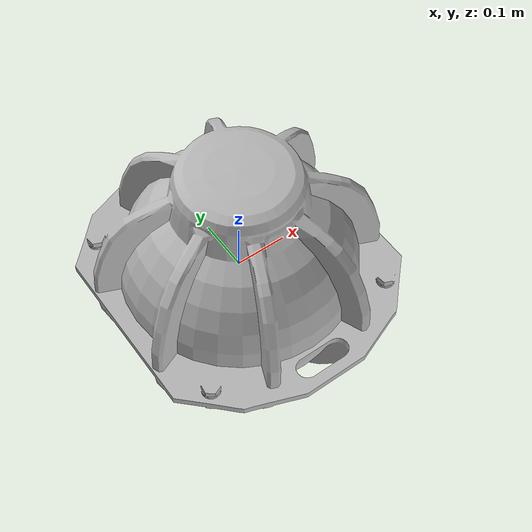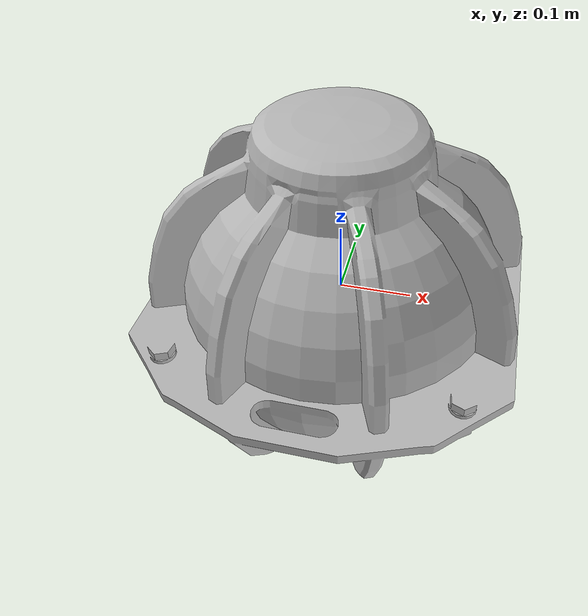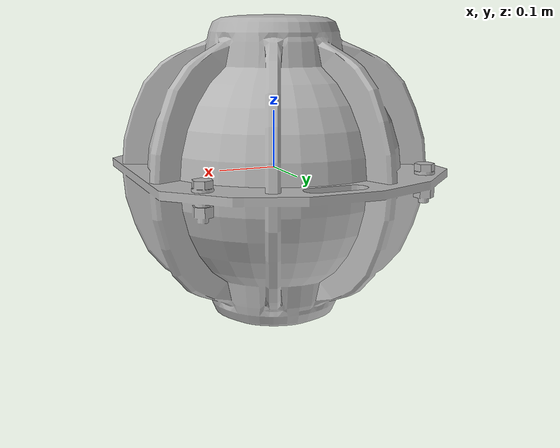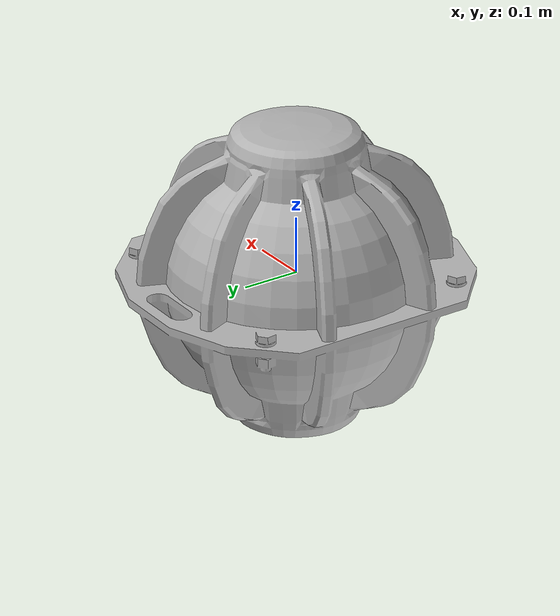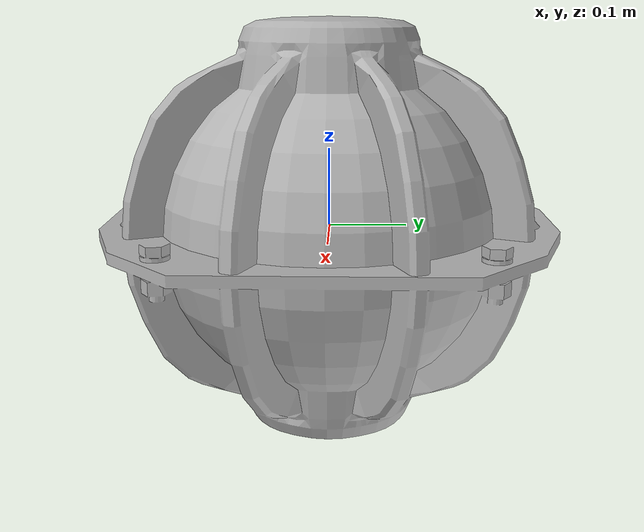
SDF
<?xml version="1.0"?>
<sdf version="1.6">
  <model name="hardhat_octagonal">
    <static>false</static>
    <link name="base_link">
      <inertial>
        <mass>17.7</mass>
        <inertia>
          <ixx>0.55</ixx>
          <ixy>0.0</ixy>
          <ixz>0.0</ixz>
          <iyy>0.55</iyy>
          <iyz>0.0</iyz>
          <izz>0.55</izz>
        </inertia>
      </inertial>
      <visual name="visual">
        <geometry>
           <mesh>
            <uri>file://hardhat_octagonal/meshes/hardhat_octagonal.dae</uri>
          </mesh>
        </geometry>
      </visual>
      <collision name="collision">
        <pose>0 0 0 0 0 0</pose>
        <geometry>
          <mesh>
	    <uri>file://hardhat_octagonal/meshes/hardhat_octagonal_collision.dae</uri>
          </mesh>
        </geometry>
      </collision>
    </link>
  </model>
</sdf>
